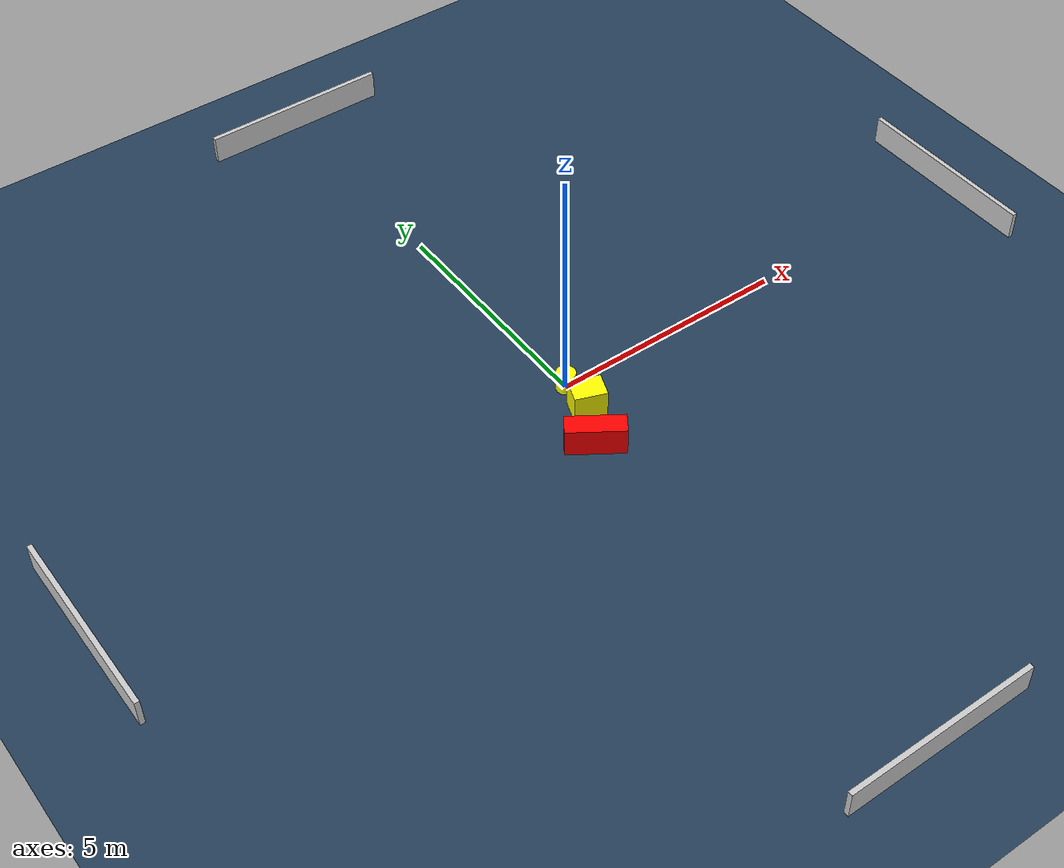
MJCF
<?xml version="1.0" ?>
<mujoco model="generated_environment">
  <option timestep="0.01" integrator="RK4" cone="elliptic"/>
  <default>
    <geom density="1"/>
  </default>
  <asset>
    <texture builtin="gradient" height="3072" name="skybox" rgb1="0.3 0.5 0.7" rgb2="0 0 0" type="skybox" width="512"/>
    <texture builtin="checker" height="300" name="groundplane" rgb1="0.2 0.3 0.4" rgb2="0.1 0.2 0.3" type="2d" width="300"/>
    <material name="groundplane" reflectance="0.2" texrepeat="5 5" texture="groundplane"/>
  </asset>
  <worldbody>
    <light dir="0 0 -1" directional="true" pos="0 0 1.5"/>
    <geom condim="3" friction="0.5 0.005 0.001" material="groundplane" name="floor" pos="0 0 0" size="0 0 0.05" type="plane"/>
    <body name="walls">
      <geom name="wall_1" condim="4" pos="-10.0 0.0 0.3" rgba="0.800000011920929 0.800000011920929 0.800000011920929 1.0" size="0.05 2.0 0.3" type="box"/>
      <geom name="wall_2" condim="4" pos="10.0 0.0 0.3" rgba="0.800000011920929 0.800000011920929 0.800000011920929 1.0" size="0.05 2.0 0.3" type="box"/>
      <geom name="wall_3" condim="4" pos="0.0 -10.0 0.3" rgba="0.800000011920929 0.800000011920929 0.800000011920929 1.0" size="2.0 0.05 0.3" type="box"/>
      <geom name="wall_4" condim="4" pos="0.0 10.0 0.3" rgba="0.800000011920929 0.800000011920929 0.800000011920929 1.0" size="2.0 0.05 0.3" type="box"/>
    </body>
    <body name="robot">
      <joint name="joint_x" type="slide" pos="0 0 0" axis="1 0 0"/>
      <joint name="joint_y" type="slide" pos="0 0 0" axis="0 1 0"/>
      <geom name="robot" type="cylinder" pos="0.0 0.0 0.2" size="0.2 0.2 0.0" mass="5.0" friction="1.0 0.005 0.0001" condim="4" rgba="1.0 1.0 0.0 1.0"/>
    </body>
    <body name="obstacle_1_movable">
      <geom name="obstacle_1_movable" condim="4" pos="-0.01988097960925163 -0.7094020142861522 0.3" euler="0 0 339.3380247952085" friction="0.0 0.005 0.001" rgba="1.0 1.0 0.0 1.0" size="0.3267945900322179 0.2487632843809648 0.3" type="box" mass="0.1"/>
      <joint type="free"/>
    </body>
    <body name="obstacle_2_static">
      <geom name="obstacle_2_static" condim="4" pos="-0.4546359820105305 -1.530688699538361 0.3" euler="0 0 55.89961994683684" friction="0.0 0.005 0.001" rgba="1.0 0.0 0.0 1.0" size="0.2099226806203517 0.5869998801033891 0.3" type="box"/>
    </body>
  </worldbody>
  <actuator>
    <motor name="actuator_x" joint="joint_x" gear="1" ctrlrange="-1 1"/>
    <motor name="actuator_y" joint="joint_y" gear="1" ctrlrange="-1 1"/>
  </actuator>
</mujoco>
